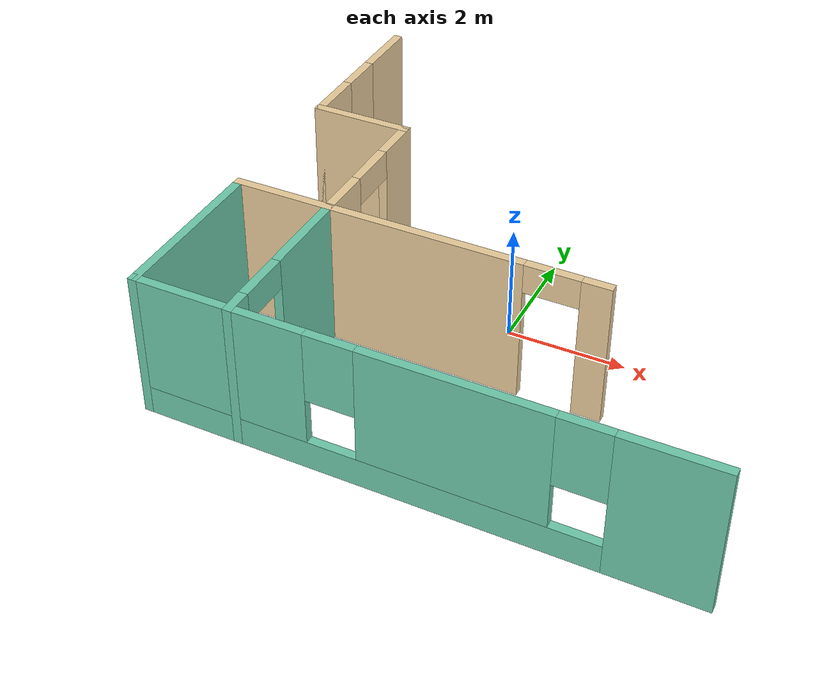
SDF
<sdf version="1.6">
 <model name="someHouse">
  <link name="Wall_38">
   <pose>-4.175 2.725 0 0 0 -1.5708</pose>
   <visual name="Wall_38_Visual_0">
    <pose>-0.917775 0 1.25 0 -0 0</pose>
    <geometry><box><size>1.16445 0.15 2.5</size></box></geometry>
    <material>
     <script><uri>file://media/materials/scripts/gazebo.material</uri><name>Gazebo/Grey</name></script>
     <ambient>0.921569 0.807843 0.615686 1</ambient>
     <shader type="pixel"/>
     <diffuse>0.7 0.7 0.7 1</diffuse>
     <specular>0.01 0.01 0.01 1</specular>
     <emissive>0 0 0 1</emissive>
    </material>
    <meta><layer>0</layer></meta>
   </visual>
   <visual name="Wall_38_Visual_1">
    <pose>0.582225 0 0.25 0 -0 0</pose>
    <geometry><box><size>1.83555 0.15 0.5</size></box></geometry>
    <material>
     <script><uri>file://media/materials/scripts/gazebo.material</uri><name>Gazebo/Grey</name></script>
     <ambient>0.921569 0.807843 0.615686 1</ambient>
     <shader type="pixel"/>
     <diffuse>0.7 0.7 0.7 1</diffuse>
     <specular>0.01 0.01 0.01 1</specular>
     <emissive>0 0 0 1</emissive>
    </material>
    <meta><layer>0</layer></meta>
   </visual>
   <visual name="Wall_38_Visual_2">
    <pose>0.982225 0 1.5 0 -0 0</pose>
    <geometry><box><size>1.03555 0.15 2</size></box></geometry>
    <material>
     <script><uri>file://media/materials/scripts/gazebo.material</uri><name>Gazebo/Grey</name></script>
     <ambient>0.921569 0.807843 0.615686 1</ambient>
     <shader type="pixel"/>
     <diffuse>0.7 0.7 0.7 1</diffuse>
     <specular>0.01 0.01 0.01 1</specular>
     <emissive>0 0 0 1</emissive>
    </material>
    <meta><layer>0</layer></meta>
   </visual>
   <visual name="Wall_38_Visual_3">
    <pose>0.06445 0 1.9 0 -0 0</pose>
    <geometry><box><size>0.8 0.15 1.2</size></box></geometry>
    <material>
     <script><uri>file://media/materials/scripts/gazebo.material</uri><name>Gazebo/Grey</name></script>
     <ambient>0.921569 0.807843 0.615686 1</ambient>
     <shader type="pixel"/>
     <diffuse>0.7 0.7 0.7 1</diffuse>
     <specular>0.01 0.01 0.01 1</specular>
     <emissive>0 0 0 1</emissive>
    </material>
    <meta><layer>0</layer></meta>
   </visual>
   <collision name="Wall_38_Collision_0">
    <pose>-0.917775 0 1.25 0 -0 0</pose>
    <geometry><box><size>1.16445 0.15 2.5</size></box></geometry>
    <surface>
     <friction>
      <ode><mu>1</mu><mu2>1</mu2><fdir1>0 0 0</fdir1><slip1>0</slip1><slip2>0</slip2></ode>
      <torsional>
       <coefficient>1</coefficient>
       <patch_radius>0</patch_radius>
       <surface_radius>0</surface_radius>
       <use_patch_radius>1</use_patch_radius>
       <ode><slip>0</slip></ode>
      </torsional>
     </friction>
     <bounce><restitution_coefficient>0</restitution_coefficient><threshold>1e+06</threshold></bounce>
     <contact>
      <collide_without_contact>0</collide_without_contact>
      <collide_without_contact_bitmask>1</collide_without_contact_bitmask>
      <collide_bitmask>1</collide_bitmask>
      <ode>
       <soft_cfm>0</soft_cfm>
       <soft_erp>0.2</soft_erp>
       <kp>1e+13</kp>
       <kd>1</kd>
       <max_vel>0.01</max_vel>
       <min_depth>0</min_depth>
      </ode>
      <bullet>
       <split_impulse>1</split_impulse>
       <split_impulse_penetration_threshold>-0.01</split_impulse_penetration_threshold>
       <soft_cfm>0</soft_cfm>
       <soft_erp>0.2</soft_erp>
       <kp>1e+13</kp>
       <kd>1</kd>
      </bullet>
     </contact>
    </surface>
   </collision>
   <collision name="Wall_38_Collision_1">
    <pose>0.582225 0 0.25 0 -0 0</pose>
    <geometry><box><size>1.83555 0.15 0.5</size></box></geometry>
    <surface>
     <friction>
      <ode><mu>1</mu><mu2>1</mu2><fdir1>0 0 0</fdir1><slip1>0</slip1><slip2>0</slip2></ode>
      <torsional>
       <coefficient>1</coefficient>
       <patch_radius>0</patch_radius>
       <surface_radius>0</surface_radius>
       <use_patch_radius>1</use_patch_radius>
       <ode><slip>0</slip></ode>
      </torsional>
     </friction>
     <bounce><restitution_coefficient>0</restitution_coefficient><threshold>1e+06</threshold></bounce>
     <contact>
      <collide_without_contact>0</collide_without_contact>
      <collide_without_contact_bitmask>1</collide_without_contact_bitmask>
      <collide_bitmask>1</collide_bitmask>
      <ode>
       <soft_cfm>0</soft_cfm>
       <soft_erp>0.2</soft_erp>
       <kp>1e+13</kp>
       <kd>1</kd>
       <max_vel>0.01</max_vel>
       <min_depth>0</min_depth>
      </ode>
      <bullet>
       <split_impulse>1</split_impulse>
       <split_impulse_penetration_threshold>-0.01</split_impulse_penetration_threshold>
       <soft_cfm>0</soft_cfm>
       <soft_erp>0.2</soft_erp>
       <kp>1e+13</kp>
       <kd>1</kd>
      </bullet>
     </contact>
    </surface>
   </collision>
   <collision name="Wall_38_Collision_2">
    <pose>0.982225 0 1.5 0 -0 0</pose>
    <geometry><box><size>1.03555 0.15 2</size></box></geometry>
    <surface>
     <friction>
      <ode><mu>1</mu><mu2>1</mu2><fdir1>0 0 0</fdir1><slip1>0</slip1><slip2>0</slip2></ode>
      <torsional>
       <coefficient>1</coefficient>
       <patch_radius>0</patch_radius>
       <surface_radius>0</surface_radius>
       <use_patch_radius>1</use_patch_radius>
       <ode><slip>0</slip></ode>
      </torsional>
     </friction>
     <bounce><restitution_coefficient>0</restitution_coefficient><threshold>1e+06</threshold></bounce>
     <contact>
      <collide_without_contact>0</collide_without_contact>
      <collide_without_contact_bitmask>1</collide_without_contact_bitmask>
      <collide_bitmask>1</collide_bitmask>
      <ode>
       <soft_cfm>0</soft_cfm>
       <soft_erp>0.2</soft_erp>
       <kp>1e+13</kp>
       <kd>1</kd>
       <max_vel>0.01</max_vel>
       <min_depth>0</min_depth>
      </ode>
      <bullet>
       <split_impulse>1</split_impulse>
       <split_impulse_penetration_threshold>-0.01</split_impulse_penetration_threshold>
       <soft_cfm>0</soft_cfm>
       <soft_erp>0.2</soft_erp>
       <kp>1e+13</kp>
       <kd>1</kd>
      </bullet>
     </contact>
    </surface>
   </collision>
   <collision name="Wall_38_Collision_3">
    <pose>0.06445 0 1.9 0 -0 0</pose>
    <geometry><box><size>0.8 0.15 1.2</size></box></geometry>
    <surface>
     <friction>
      <ode><mu>1</mu><mu2>1</mu2><fdir1>0 0 0</fdir1><slip1>0</slip1><slip2>0</slip2></ode>
      <torsional>
       <coefficient>1</coefficient>
       <patch_radius>0</patch_radius>
       <surface_radius>0</surface_radius>
       <use_patch_radius>1</use_patch_radius>
       <ode><slip>0</slip></ode>
      </torsional>
     </friction>
     <bounce><restitution_coefficient>0</restitution_coefficient><threshold>1e+06</threshold></bounce>
     <contact>
      <collide_without_contact>0</collide_without_contact>
      <collide_without_contact_bitmask>1</collide_without_contact_bitmask>
      <collide_bitmask>1</collide_bitmask>
      <ode>
       <soft_cfm>0</soft_cfm>
       <soft_erp>0.2</soft_erp>
       <kp>1e+13</kp>
       <kd>1</kd>
       <max_vel>0.01</max_vel>
       <min_depth>0</min_depth>
      </ode>
      <bullet>
       <split_impulse>1</split_impulse>
       <split_impulse_penetration_threshold>-0.01</split_impulse_penetration_threshold>
       <soft_cfm>0</soft_cfm>
       <soft_erp>0.2</soft_erp>
       <kp>1e+13</kp>
       <kd>1</kd>
      </bullet>
     </contact>
    </surface>
   </collision>
  </link>
  <link name="Wall_39">
   <pose>-3.375 1.3 0 0 -0 0</pose>
   <visual name="Wall_39_Visual">
    <pose>0 0 1.25 0 -0 0</pose>
    <geometry><box><size>1.75 0.15 2.5</size></box></geometry>
    <material>
     <script><uri>file://media/materials/scripts/gazebo.material</uri><name>Gazebo/Grey</name></script>
     <ambient>0.921569 0.807843 0.615686 1</ambient>
     <shader type="pixel"/>
     <diffuse>0.7 0.7 0.7 1</diffuse>
     <specular>0.01 0.01 0.01 1</specular>
     <emissive>0 0 0 1</emissive>
    </material>
    <meta><layer>0</layer></meta>
   </visual>
   <collision name="Wall_39_Collision">
    <pose>0 0 1.25 0 -0 0</pose>
    <geometry><box><size>1.75 0.15 2.5</size></box></geometry>
    <surface>
     <friction>
      <ode><mu>1</mu><mu2>1</mu2><fdir1>0 0 0</fdir1><slip1>0</slip1><slip2>0</slip2></ode>
      <torsional>
       <coefficient>1</coefficient>
       <patch_radius>0</patch_radius>
       <surface_radius>0</surface_radius>
       <use_patch_radius>1</use_patch_radius>
       <ode><slip>0</slip></ode>
      </torsional>
     </friction>
     <bounce><restitution_coefficient>0</restitution_coefficient><threshold>1e+06</threshold></bounce>
     <contact>
      <collide_without_contact>0</collide_without_contact>
      <collide_without_contact_bitmask>1</collide_without_contact_bitmask>
      <collide_bitmask>1</collide_bitmask>
      <ode>
       <soft_cfm>0</soft_cfm>
       <soft_erp>0.2</soft_erp>
       <kp>1e+13</kp>
       <kd>1</kd>
       <max_vel>0.01</max_vel>
       <min_depth>0</min_depth>
      </ode>
      <bullet>
       <split_impulse>1</split_impulse>
       <split_impulse_penetration_threshold>-0.01</split_impulse_penetration_threshold>
       <soft_cfm>0</soft_cfm>
       <soft_erp>0.2</soft_erp>
       <kp>1e+13</kp>
       <kd>1</kd>
      </bullet>
     </contact>
    </surface>
   </collision>
  </link>
  <link name="Wall_40">
   <pose>-2.575 0 0 0 0 -1.5708</pose>
   <visual name="Wall_40_Visual_0">
    <pose>-0.940762 0 1.25 0 -0 0</pose>
    <geometry><box><size>0.868475 0.15 2.5</size></box></geometry>
    <material>
     <script><uri>file://media/materials/scripts/gazebo.material</uri><name>Gazebo/Grey</name></script>
     <ambient>0.921569 0.807843 0.615686 1</ambient>
     <shader type="pixel"/>
     <diffuse>0.7 0.7 0.7 1</diffuse>
     <specular>0.01 0.01 0.01 1</specular>
     <emissive>0 0 0 1</emissive>
    </material>
    <meta><layer>0</layer></meta>
   </visual>
   <visual name="Wall_40_Visual_1">
    <pose>0.884238 0 1.25 0 -0 0</pose>
    <geometry><box><size>0.981525 0.15 2.5</size></box></geometry>
    <material>
     <script><uri>file://media/materials/scripts/gazebo.material</uri><name>Gazebo/Grey</name></script>
     <ambient>0.921569 0.807843 0.615686 1</ambient>
     <shader type="pixel"/>
     <diffuse>0.7 0.7 0.7 1</diffuse>
     <specular>0.01 0.01 0.01 1</specular>
     <emissive>0 0 0 1</emissive>
    </material>
    <meta><layer>0</layer></meta>
   </visual>
   <visual name="Wall_40_Visual_2">
    <pose>-0.056525 0 2.25 0 -0 0</pose>
    <geometry><box><size>0.9 0.15 0.5</size></box></geometry>
    <material>
     <script><uri>file://media/materials/scripts/gazebo.material</uri><name>Gazebo/Grey</name></script>
     <ambient>0.921569 0.807843 0.615686 1</ambient>
     <shader type="pixel"/>
     <diffuse>0.7 0.7 0.7 1</diffuse>
     <specular>0.01 0.01 0.01 1</specular>
     <emissive>0 0 0 1</emissive>
    </material>
    <meta><layer>0</layer></meta>
   </visual>
   <collision name="Wall_40_Collision_0">
    <pose>-0.940762 0 1.25 0 -0 0</pose>
    <geometry><box><size>0.868475 0.15 2.5</size></box></geometry>
    <surface>
     <friction>
      <ode><mu>1</mu><mu2>1</mu2><fdir1>0 0 0</fdir1><slip1>0</slip1><slip2>0</slip2></ode>
      <torsional>
       <coefficient>1</coefficient>
       <patch_radius>0</patch_radius>
       <surface_radius>0</surface_radius>
       <use_patch_radius>1</use_patch_radius>
       <ode><slip>0</slip></ode>
      </torsional>
     </friction>
     <bounce><restitution_coefficient>0</restitution_coefficient><threshold>1e+06</threshold></bounce>
     <contact>
      <collide_without_contact>0</collide_without_contact>
      <collide_without_contact_bitmask>1</collide_without_contact_bitmask>
      <collide_bitmask>1</collide_bitmask>
      <ode>
       <soft_cfm>0</soft_cfm>
       <soft_erp>0.2</soft_erp>
       <kp>1e+13</kp>
       <kd>1</kd>
       <max_vel>0.01</max_vel>
       <min_depth>0</min_depth>
      </ode>
      <bullet>
       <split_impulse>1</split_impulse>
       <split_impulse_penetration_threshold>-0.01</split_impulse_penetration_threshold>
       <soft_cfm>0</soft_cfm>
       <soft_erp>0.2</soft_erp>
       <kp>1e+13</kp>
       <kd>1</kd>
      </bullet>
     </contact>
    </surface>
   </collision>
   <collision name="Wall_40_Collision_1">
    <pose>0.884238 0 1.25 0 -0 0</pose>
    <geometry><box><size>0.981525 0.15 2.5</size></box></geometry>
    <surface>
     <friction>
      <ode><mu>1</mu><mu2>1</mu2><fdir1>0 0 0</fdir1><slip1>0</slip1><slip2>0</slip2></ode>
      <torsional>
       <coefficient>1</coefficient>
       <patch_radius>0</patch_radius>
       <surface_radius>0</surface_radius>
       <use_patch_radius>1</use_patch_radius>
       <ode><slip>0</slip></ode>
      </torsional>
     </friction>
     <bounce><restitution_coefficient>0</restitution_coefficient><threshold>1e+06</threshold></bounce>
     <contact>
      <collide_without_contact>0</collide_without_contact>
      <collide_without_contact_bitmask>1</collide_without_contact_bitmask>
      <collide_bitmask>1</collide_bitmask>
      <ode>
       <soft_cfm>0</soft_cfm>
       <soft_erp>0.2</soft_erp>
       <kp>1e+13</kp>
       <kd>1</kd>
       <max_vel>0.01</max_vel>
       <min_depth>0</min_depth>
      </ode>
      <bullet>
       <split_impulse>1</split_impulse>
       <split_impulse_penetration_threshold>-0.01</split_impulse_penetration_threshold>
       <soft_cfm>0</soft_cfm>
       <soft_erp>0.2</soft_erp>
       <kp>1e+13</kp>
       <kd>1</kd>
      </bullet>
     </contact>
    </surface>
   </collision>
   <collision name="Wall_40_Collision_2">
    <pose>-0.056525 0 2.25 0 -0 0</pose>
    <geometry><box><size>0.9 0.15 0.5</size></box></geometry>
    <surface>
     <friction>
      <ode><mu>1</mu><mu2>1</mu2><fdir1>0 0 0</fdir1><slip1>0</slip1><slip2>0</slip2></ode>
      <torsional>
       <coefficient>1</coefficient>
       <patch_radius>0</patch_radius>
       <surface_radius>0</surface_radius>
       <use_patch_radius>1</use_patch_radius>
       <ode><slip>0</slip></ode>
      </torsional>
     </friction>
     <bounce><restitution_coefficient>0</restitution_coefficient><threshold>1e+06</threshold></bounce>
     <contact>
      <collide_without_contact>0</collide_without_contact>
      <collide_without_contact_bitmask>1</collide_without_contact_bitmask>
      <collide_bitmask>1</collide_bitmask>
      <ode>
       <soft_cfm>0</soft_cfm>
       <soft_erp>0.2</soft_erp>
       <kp>1e+13</kp>
       <kd>1</kd>
       <max_vel>0.01</max_vel>
       <min_depth>0</min_depth>
      </ode>
      <bullet>
       <split_impulse>1</split_impulse>
       <split_impulse_penetration_threshold>-0.01</split_impulse_penetration_threshold>
       <soft_cfm>0</soft_cfm>
       <soft_erp>0.2</soft_erp>
       <kp>1e+13</kp>
       <kd>1</kd>
      </bullet>
     </contact>
    </surface>
   </collision>
  </link>
  <link name="Wall_41">
   <pose>-0.275 -1.3 0 0 -0 0</pose>
   <visual name="Wall_41_Visual_0">
    <pose>-0.691647 0 1.25 0 -0 0</pose>
    <geometry><box><size>3.36671 0.15 2.5</size></box></geometry>
    <material>
     <script><uri>file://media/materials/scripts/gazebo.material</uri><name>Gazebo/Grey</name></script>
     <ambient>0.921569 0.807843 0.615686 1</ambient>
     <shader type="pixel"/>
     <diffuse>0.7 0.7 0.7 1</diffuse>
     <specular>0.01 0.01 0.01 1</specular>
     <emissive>0 0 0 1</emissive>
    </material>
    <meta><layer>0</layer></meta>
   </visual>
   <visual name="Wall_41_Visual_1">
    <pose>2.13335 0 1.25 0 -0 0</pose>
    <geometry><box><size>0.483294 0.15 2.5</size></box></geometry>
    <material>
     <script><uri>file://media/materials/scripts/gazebo.material</uri><name>Gazebo/Grey</name></script>
     <ambient>0.921569 0.807843 0.615686 1</ambient>
     <shader type="pixel"/>
     <diffuse>0.7 0.7 0.7 1</diffuse>
     <specular>0.01 0.01 0.01 1</specular>
     <emissive>0 0 0 1</emissive>
    </material>
    <meta><layer>0</layer></meta>
   </visual>
   <visual name="Wall_41_Visual_2">
    <pose>1.44171 0 2.25 0 -0 0</pose>
    <geometry><box><size>0.9 0.15 0.5</size></box></geometry>
    <material>
     <script><uri>file://media/materials/scripts/gazebo.material</uri><name>Gazebo/Grey</name></script>
     <ambient>0.921569 0.807843 0.615686 1</ambient>
     <shader type="pixel"/>
     <diffuse>0.7 0.7 0.7 1</diffuse>
     <specular>0.01 0.01 0.01 1</specular>
     <emissive>0 0 0 1</emissive>
    </material>
    <meta><layer>0</layer></meta>
   </visual>
   <collision name="Wall_41_Collision_0">
    <pose>-0.691647 0 1.25 0 -0 0</pose>
    <geometry><box><size>3.36671 0.15 2.5</size></box></geometry>
    <surface>
     <friction>
      <ode><mu>1</mu><mu2>1</mu2><fdir1>0 0 0</fdir1><slip1>0</slip1><slip2>0</slip2></ode>
      <torsional>
       <coefficient>1</coefficient>
       <patch_radius>0</patch_radius>
       <surface_radius>0</surface_radius>
       <use_patch_radius>1</use_patch_radius>
       <ode><slip>0</slip></ode>
      </torsional>
     </friction>
     <bounce><restitution_coefficient>0</restitution_coefficient><threshold>1e+06</threshold></bounce>
     <contact>
      <collide_without_contact>0</collide_without_contact>
      <collide_without_contact_bitmask>1</collide_without_contact_bitmask>
      <collide_bitmask>1</collide_bitmask>
      <ode>
       <soft_cfm>0</soft_cfm>
       <soft_erp>0.2</soft_erp>
       <kp>1e+13</kp>
       <kd>1</kd>
       <max_vel>0.01</max_vel>
       <min_depth>0</min_depth>
      </ode>
      <bullet>
       <split_impulse>1</split_impulse>
       <split_impulse_penetration_threshold>-0.01</split_impulse_penetration_threshold>
       <soft_cfm>0</soft_cfm>
       <soft_erp>0.2</soft_erp>
       <kp>1e+13</kp>
       <kd>1</kd>
      </bullet>
     </contact>
    </surface>
   </collision>
   <collision name="Wall_41_Collision_1">
    <pose>2.13335 0 1.25 0 -0 0</pose>
    <geometry><box><size>0.483294 0.15 2.5</size></box></geometry>
    <surface>
     <friction>
      <ode><mu>1</mu><mu2>1</mu2><fdir1>0 0 0</fdir1><slip1>0</slip1><slip2>0</slip2></ode>
      <torsional>
       <coefficient>1</coefficient>
       <patch_radius>0</patch_radius>
       <surface_radius>0</surface_radius>
       <use_patch_radius>1</use_patch_radius>
       <ode><slip>0</slip></ode>
      </torsional>
     </friction>
     <bounce><restitution_coefficient>0</restitution_coefficient><threshold>1e+06</threshold></bounce>
     <contact>
      <collide_without_contact>0</collide_without_contact>
      <collide_without_contact_bitmask>1</collide_without_contact_bitmask>
      <collide_bitmask>1</collide_bitmask>
      <ode>
       <soft_cfm>0</soft_cfm>
       <soft_erp>0.2</soft_erp>
       <kp>1e+13</kp>
       <kd>1</kd>
       <max_vel>0.01</max_vel>
       <min_depth>0</min_depth>
      </ode>
      <bullet>
       <split_impulse>1</split_impulse>
       <split_impulse_penetration_threshold>-0.01</split_impulse_penetration_threshold>
       <soft_cfm>0</soft_cfm>
       <soft_erp>0.2</soft_erp>
       <kp>1e+13</kp>
       <kd>1</kd>
      </bullet>
     </contact>
    </surface>
   </collision>
   <collision name="Wall_41_Collision_2">
    <pose>1.44171 0 2.25 0 -0 0</pose>
    <geometry><box><size>0.9 0.15 0.5</size></box></geometry>
    <surface>
     <friction>
      <ode><mu>1</mu><mu2>1</mu2><fdir1>0 0 0</fdir1><slip1>0</slip1><slip2>0</slip2></ode>
      <torsional>
       <coefficient>1</coefficient>
       <patch_radius>0</patch_radius>
       <surface_radius>0</surface_radius>
       <use_patch_radius>1</use_patch_radius>
       <ode><slip>0</slip></ode>
      </torsional>
     </friction>
     <bounce><restitution_coefficient>0</restitution_coefficient><threshold>1e+06</threshold></bounce>
     <contact>
      <collide_without_contact>0</collide_without_contact>
      <collide_without_contact_bitmask>1</collide_without_contact_bitmask>
      <collide_bitmask>1</collide_bitmask>
      <ode>
       <soft_cfm>0</soft_cfm>
       <soft_erp>0.2</soft_erp>
       <kp>1e+13</kp>
       <kd>1</kd>
       <max_vel>0.01</max_vel>
       <min_depth>0</min_depth>
      </ode>
      <bullet>
       <split_impulse>1</split_impulse>
       <split_impulse_penetration_threshold>-0.01</split_impulse_penetration_threshold>
       <soft_cfm>0</soft_cfm>
       <soft_erp>0.2</soft_erp>
       <kp>1e+13</kp>
       <kd>1</kd>
      </bullet>
     </contact>
    </surface>
   </collision>
  </link>
  <link name="Wall_46">
   <pose>0.25 -4.15 0 0 -0 3.14159</pose>
   <visual name="Wall_46_Visual_0">
    <pose>-3.71177 0 1.25 0 -0 0</pose>
    <geometry><box><size>1.57647 0.15 2.5</size></box></geometry>
    <material>
     <script><uri>file://media/materials/scripts/gazebo.material</uri><name>Gazebo/Grey</name></script>
     <ambient>0.435294 0.796078 0.67451 1</ambient>
     <shader type="pixel"/>
     <diffuse>0.7 0.7 0.7 1</diffuse>
     <specular>0.01 0.01 0.01 1</specular>
     <emissive>0 0 0 1</emissive>
    </material>
    <meta><layer>0</layer></meta>
   </visual>
   <visual name="Wall_46_Visual_1">
    <pose>0.788235 0 0.25 0 -0 0</pose>
    <geometry><box><size>7.42353 0.15 0.5</size></box></geometry>
    <material>
     <script><uri>file://media/materials/scripts/gazebo.material</uri><name>Gazebo/Grey</name></script>
     <ambient>0.435294 0.796078 0.67451 1</ambient>
     <shader type="pixel"/>
     <diffuse>0.7 0.7 0.7 1</diffuse>
     <specular>0.01 0.01 0.01 1</specular>
     <emissive>0 0 0 1</emissive>
    </material>
    <meta><layer>0</layer></meta>
   </visual>
   <visual name="Wall_46_Visual_2">
    <pose>-0.652093 0 1.5 0 -0 0</pose>
    <geometry><box><size>2.94287 0.15 2</size></box></geometry>
    <material>
     <script><uri>file://media/materials/scripts/gazebo.material</uri><name>Gazebo/Grey</name></script>
     <ambient>0.435294 0.796078 0.67451 1</ambient>
     <shader type="pixel"/>
     <diffuse>0.7 0.7 0.7 1</diffuse>
     <specular>0.01 0.01 0.01 1</specular>
     <emissive>0 0 0 1</emissive>
    </material>
    <meta><layer>0</layer></meta>
   </visual>
   <visual name="Wall_46_Visual_3">
    <pose>3.05967 0 1.5 0 -0 0</pose>
    <geometry><box><size>2.88066 0.15 2</size></box></geometry>
    <material>
     <script><uri>file://media/materials/scripts/gazebo.material</uri><name>Gazebo/Grey</name></script>
     <ambient>0.435294 0.796078 0.67451 1</ambient>
     <shader type="pixel"/>
     <diffuse>0.7 0.7 0.7 1</diffuse>
     <specular>0.01 0.01 0.01 1</specular>
     <emissive>0 0 0 1</emissive>
    </material>
    <meta><layer>0</layer></meta>
   </visual>
   <visual name="Wall_46_Visual_4">
    <pose>-2.52353 0 1.9 0 -0 0</pose>
    <geometry><box><size>0.8 0.15 1.2</size></box></geometry>
    <material>
     <script><uri>file://media/materials/scripts/gazebo.material</uri><name>Gazebo/Grey</name></script>
     <ambient>0.435294 0.796078 0.67451 1</ambient>
     <shader type="pixel"/>
     <diffuse>0.7 0.7 0.7 1</diffuse>
     <specular>0.01 0.01 0.01 1</specular>
     <emissive>0 0 0 1</emissive>
    </material>
    <meta><layer>0</layer></meta>
   </visual>
   <visual name="Wall_46_Visual_5">
    <pose>1.21934 0 1.9 0 -0 0</pose>
    <geometry><box><size>0.8 0.15 1.2</size></box></geometry>
    <material>
     <script><uri>file://media/materials/scripts/gazebo.material</uri><name>Gazebo/Grey</name></script>
     <ambient>0.435294 0.796078 0.67451 1</ambient>
     <shader type="pixel"/>
     <diffuse>0.7 0.7 0.7 1</diffuse>
     <specular>0.01 0.01 0.01 1</specular>
     <emissive>0 0 0 1</emissive>
    </material>
    <meta><layer>0</layer></meta>
   </visual>
   <collision name="Wall_46_Collision_0">
    <pose>-3.71177 0 1.25 0 -0 0</pose>
    <geometry><box><size>1.57647 0.15 2.5</size></box></geometry>
    <surface>
     <friction>
      <ode><mu>1</mu><mu2>1</mu2><fdir1>0 0 0</fdir1><slip1>0</slip1><slip2>0</slip2></ode>
      <torsional>
       <coefficient>1</coefficient>
       <patch_radius>0</patch_radius>
       <surface_radius>0</surface_radius>
       <use_patch_radius>1</use_patch_radius>
       <ode><slip>0</slip></ode>
      </torsional>
     </friction>
     <bounce><restitution_coefficient>0</restitution_coefficient><threshold>1e+06</threshold></bounce>
     <contact>
      <collide_without_contact>0</collide_without_contact>
      <collide_without_contact_bitmask>1</collide_without_contact_bitmask>
      <collide_bitmask>1</collide_bitmask>
      <ode>
       <soft_cfm>0</soft_cfm>
       <soft_erp>0.2</soft_erp>
       <kp>1e+13</kp>
       <kd>1</kd>
       <max_vel>0.01</max_vel>
       <min_depth>0</min_depth>
      </ode>
      <bullet>
       <split_impulse>1</split_impulse>
       <split_impulse_penetration_threshold>-0.01</split_impulse_penetration_threshold>
       <soft_cfm>0</soft_cfm>
       <soft_erp>0.2</soft_erp>
       <kp>1e+13</kp>
       <kd>1</kd>
      </bullet>
     </contact>
    </surface>
   </collision>
   <collision name="Wall_46_Collision_1">
    <pose>0.788235 0 0.25 0 -0 0</pose>
    <geometry><box><size>7.42353 0.15 0.5</size></box></geometry>
    <surface>
     <friction>
      <ode><mu>1</mu><mu2>1</mu2><fdir1>0 0 0</fdir1><slip1>0</slip1><slip2>0</slip2></ode>
      <torsional>
       <coefficient>1</coefficient>
       <patch_radius>0</patch_radius>
       <surface_radius>0</surface_radius>
       <use_patch_radius>1</use_patch_radius>
       <ode><slip>0</slip></ode>
      </torsional>
     </friction>
     <bounce><restitution_coefficient>0</restitution_coefficient><threshold>1e+06</threshold></bounce>
     <contact>
      <collide_without_contact>0</collide_without_contact>
      <collide_without_contact_bitmask>1</collide_without_contact_bitmask>
      <collide_bitmask>1</collide_bitmask>
      <ode>
       <soft_cfm>0</soft_cfm>
       <soft_erp>0.2</soft_erp>
       <kp>1e+13</kp>
       <kd>1</kd>
       <max_vel>0.01</max_vel>
       <min_depth>0</min_depth>
      </ode>
      <bullet>
       <split_impulse>1</split_impulse>
       <split_impulse_penetration_threshold>-0.01</split_impulse_penetration_threshold>
       <soft_cfm>0</soft_cfm>
       <soft_erp>0.2</soft_erp>
       <kp>1e+13</kp>
       <kd>1</kd>
      </bullet>
     </contact>
    </surface>
   </collision>
   <collision name="Wall_46_Collision_3">
    <pose>3.05967 0 1.5 0 -0 0</pose>
    <geometry><box><size>2.88066 0.15 2</size></box></geometry>
    <surface>
     <friction>
      <ode><mu>1</mu><mu2>1</mu2><fdir1>0 0 0</fdir1><slip1>0</slip1><slip2>0</slip2></ode>
      <torsional>
       <coefficient>1</coefficient>
       <patch_radius>0</patch_radius>
       <surface_radius>0</surface_radius>
       <use_patch_radius>1</use_patch_radius>
       <ode><slip>0</slip></ode>
      </torsional>
     </friction>
     <bounce><restitution_coefficient>0</restitution_coefficient><threshold>1e+06</threshold></bounce>
     <contact>
      <collide_without_contact>0</collide_without_contact>
      <collide_without_contact_bitmask>1</collide_without_contact_bitmask>
      <collide_bitmask>1</collide_bitmask>
      <ode>
       <soft_cfm>0</soft_cfm>
       <soft_erp>0.2</soft_erp>
       <kp>1e+13</kp>
       <kd>1</kd>
       <max_vel>0.01</max_vel>
       <min_depth>0</min_depth>
      </ode>
      <bullet>
       <split_impulse>1</split_impulse>
       <split_impulse_penetration_threshold>-0.01</split_impulse_penetration_threshold>
       <soft_cfm>0</soft_cfm>
       <soft_erp>0.2</soft_erp>
       <kp>1e+13</kp>
       <kd>1</kd>
      </bullet>
     </contact>
    </surface>
   </collision>
   <collision name="Wall_46_Collision_2">
    <pose>-0.652093 0 1.5 0 -0 0</pose>
    <geometry><box><size>2.94287 0.15 2</size></box></geometry>
    <surface>
     <friction>
      <ode><mu>1</mu><mu2>1</mu2><fdir1>0 0 0</fdir1><slip1>0</slip1><slip2>0</slip2></ode>
      <torsional>
       <coefficient>1</coefficient>
       <patch_radius>0</patch_radius>
       <surface_radius>0</surface_radius>
       <use_patch_radius>1</use_patch_radius>
       <ode><slip>0</slip></ode>
      </torsional>
     </friction>
     <bounce><restitution_coefficient>0</restitution_coefficient><threshold>1e+06</threshold></bounce>
     <contact>
      <collide_without_contact>0</collide_without_contact>
      <collide_without_contact_bitmask>1</collide_without_contact_bitmask>
      <collide_bitmask>1</collide_bitmask>
      <ode>
       <soft_cfm>0</soft_cfm>
       <soft_erp>0.2</soft_erp>
       <kp>1e+13</kp>
       <kd>1</kd>
       <max_vel>0.01</max_vel>
       <min_depth>0</min_depth>
      </ode>
      <bullet>
       <split_impulse>1</split_impulse>
       <split_impulse_penetration_threshold>-0.01</split_impulse_penetration_threshold>
       <soft_cfm>0</soft_cfm>
       <soft_erp>0.2</soft_erp>
       <kp>1e+13</kp>
       <kd>1</kd>
      </bullet>
     </contact>
    </surface>
   </collision>
   <collision name="Wall_46_Collision_4">
    <pose>-2.52353 0 1.9 0 -0 0</pose>
    <geometry><box><size>0.8 0.15 1.2</size></box></geometry>
    <surface>
     <friction>
      <ode><mu>1</mu><mu2>1</mu2><fdir1>0 0 0</fdir1><slip1>0</slip1><slip2>0</slip2></ode>
      <torsional>
       <coefficient>1</coefficient>
       <patch_radius>0</patch_radius>
       <surface_radius>0</surface_radius>
       <use_patch_radius>1</use_patch_radius>
       <ode><slip>0</slip></ode>
      </torsional>
     </friction>
     <bounce><restitution_coefficient>0</restitution_coefficient><threshold>1e+06</threshold></bounce>
     <contact>
      <collide_without_contact>0</collide_without_contact>
      <collide_without_contact_bitmask>1</collide_without_contact_bitmask>
      <collide_bitmask>1</collide_bitmask>
      <ode>
       <soft_cfm>0</soft_cfm>
       <soft_erp>0.2</soft_erp>
       <kp>1e+13</kp>
       <kd>1</kd>
       <max_vel>0.01</max_vel>
       <min_depth>0</min_depth>
      </ode>
      <bullet>
       <split_impulse>1</split_impulse>
       <split_impulse_penetration_threshold>-0.01</split_impulse_penetration_threshold>
       <soft_cfm>0</soft_cfm>
       <soft_erp>0.2</soft_erp>
       <kp>1e+13</kp>
       <kd>1</kd>
      </bullet>
     </contact>
    </surface>
   </collision>
   <collision name="Wall_46_Collision_5">
    <pose>1.21934 0 1.9 0 -0 0</pose>
    <geometry><box><size>0.8 0.15 1.2</size></box></geometry>
    <surface>
     <friction>
      <ode><mu>1</mu><mu2>1</mu2><fdir1>0 0 0</fdir1><slip1>0</slip1><slip2>0</slip2></ode>
      <torsional>
       <coefficient>1</coefficient>
       <patch_radius>0</patch_radius>
       <surface_radius>0</surface_radius>
       <use_patch_radius>1</use_patch_radius>
       <ode><slip>0</slip></ode>
      </torsional>
     </friction>
     <bounce><restitution_coefficient>0</restitution_coefficient><threshold>1e+06</threshold></bounce>
     <contact>
      <collide_without_contact>0</collide_without_contact>
      <collide_without_contact_bitmask>1</collide_without_contact_bitmask>
      <collide_bitmask>1</collide_bitmask>
      <ode>
       <soft_cfm>0</soft_cfm>
       <soft_erp>0.2</soft_erp>
       <kp>1e+13</kp>
       <kd>1</kd>
       <max_vel>0.01</max_vel>
       <min_depth>0</min_depth>
      </ode>
      <bullet>
       <split_impulse>1</split_impulse>
       <split_impulse_penetration_threshold>-0.01</split_impulse_penetration_threshold>
       <soft_cfm>0</soft_cfm>
       <soft_erp>0.2</soft_erp>
       <kp>1e+13</kp>
       <kd>1</kd>
      </bullet>
     </contact>
    </surface>
   </collision>
  </link>
  <link name="Wall_47">
   <pose>-4.175 -2.725 0 0 -0 1.5708</pose>
   <visual name="Wall_47_Visual">
    <pose>0 0 1.25 0 -0 0</pose>
    <geometry><box><size>3 0.15 2.5</size></box></geometry>
    <material>
     <script><uri>file://media/materials/scripts/gazebo.material</uri><name>Gazebo/Grey</name></script>
     <ambient>0.435294 0.796078 0.67451 1</ambient>
     <shader type="pixel"/>
     <diffuse>0.7 0.7 0.7 1</diffuse>
     <specular>0.01 0.01 0.01 1</specular>
     <emissive>0 0 0 1</emissive>
    </material>
    <meta><layer>0</layer></meta>
   </visual>
   <collision name="Wall_47_Collision">
    <pose>0 0 1.25 0 -0 0</pose>
    <geometry><box><size>3 0.15 2.5</size></box></geometry>
    <surface>
     <friction>
      <ode><mu>1</mu><mu2>1</mu2><fdir1>0 0 0</fdir1><slip1>0</slip1><slip2>0</slip2></ode>
      <torsional>
       <coefficient>1</coefficient>
       <patch_radius>0</patch_radius>
       <surface_radius>0</surface_radius>
       <use_patch_radius>1</use_patch_radius>
       <ode><slip>0</slip></ode>
      </torsional>
     </friction>
     <bounce><restitution_coefficient>0</restitution_coefficient><threshold>1e+06</threshold></bounce>
     <contact>
      <collide_without_contact>0</collide_without_contact>
      <collide_without_contact_bitmask>1</collide_without_contact_bitmask>
      <collide_bitmask>1</collide_bitmask>
      <ode>
       <soft_cfm>0</soft_cfm>
       <soft_erp>0.2</soft_erp>
       <kp>1e+13</kp>
       <kd>1</kd>
       <max_vel>0.01</max_vel>
       <min_depth>0</min_depth>
      </ode>
      <bullet>
       <split_impulse>1</split_impulse>
       <split_impulse_penetration_threshold>-0.01</split_impulse_penetration_threshold>
       <soft_cfm>0</soft_cfm>
       <soft_erp>0.2</soft_erp>
       <kp>1e+13</kp>
       <kd>1</kd>
      </bullet>
     </contact>
    </surface>
   </collision>
  </link>
  <link name="Wall_49">
   <pose>-2.575 -2.725 0 0 0 -1.5708</pose>
   <visual name="Wall_49_Visual_0">
    <pose>-0.676974 0 1.25 0 -0 0</pose>
    <geometry><box><size>1.64605 0.15 2.5</size></box></geometry>
    <material>
     <script><uri>file://media/materials/scripts/gazebo.material</uri><name>Gazebo/Grey</name></script>
     <ambient>0.435294 0.796078 0.67451 1</ambient>
     <shader type="pixel"/>
     <diffuse>0.7 0.7 0.7 1</diffuse>
     <specular>0.01 0.01 0.01 1</specular>
     <emissive>0 0 0 1</emissive>
    </material>
    <meta><layer>0</layer></meta>
   </visual>
   <visual name="Wall_49_Visual_1">
    <pose>1.27303 0 1.25 0 -0 0</pose>
    <geometry><box><size>0.453948 0.15 2.5</size></box></geometry>
    <material>
     <script><uri>file://media/materials/scripts/gazebo.material</uri><name>Gazebo/Grey</name></script>
     <ambient>0.435294 0.796078 0.67451 1</ambient>
     <shader type="pixel"/>
     <diffuse>0.7 0.7 0.7 1</diffuse>
     <specular>0.01 0.01 0.01 1</specular>
     <emissive>0 0 0 1</emissive>
    </material>
    <meta><layer>0</layer></meta>
   </visual>
   <visual name="Wall_49_Visual_2">
    <pose>0.596052 0 2.25 0 -0 0</pose>
    <geometry><box><size>0.9 0.15 0.5</size></box></geometry>
    <material>
     <script><uri>file://media/materials/scripts/gazebo.material</uri><name>Gazebo/Grey</name></script>
     <ambient>0.435294 0.796078 0.67451 1</ambient>
     <shader type="pixel"/>
     <diffuse>0.7 0.7 0.7 1</diffuse>
     <specular>0.01 0.01 0.01 1</specular>
     <emissive>0 0 0 1</emissive>
    </material>
    <meta><layer>0</layer></meta>
   </visual>
   <collision name="Wall_49_Collision_0">
    <pose>-0.676974 0 1.25 0 -0 0</pose>
    <geometry><box><size>1.64605 0.15 2.5</size></box></geometry>
    <surface>
     <friction>
      <ode><mu>1</mu><mu2>1</mu2><fdir1>0 0 0</fdir1><slip1>0</slip1><slip2>0</slip2></ode>
      <torsional>
       <coefficient>1</coefficient>
       <patch_radius>0</patch_radius>
       <surface_radius>0</surface_radius>
       <use_patch_radius>1</use_patch_radius>
       <ode><slip>0</slip></ode>
      </torsional>
     </friction>
     <bounce><restitution_coefficient>0</restitution_coefficient><threshold>1e+06</threshold></bounce>
     <contact>
      <collide_without_contact>0</collide_without_contact>
      <collide_without_contact_bitmask>1</collide_without_contact_bitmask>
      <collide_bitmask>1</collide_bitmask>
      <ode>
       <soft_cfm>0</soft_cfm>
       <soft_erp>0.2</soft_erp>
       <kp>1e+13</kp>
       <kd>1</kd>
       <max_vel>0.01</max_vel>
       <min_depth>0</min_depth>
      </ode>
      <bullet>
       <split_impulse>1</split_impulse>
       <split_impulse_penetration_threshold>-0.01</split_impulse_penetration_threshold>
       <soft_cfm>0</soft_cfm>
       <soft_erp>0.2</soft_erp>
       <kp>1e+13</kp>
       <kd>1</kd>
      </bullet>
     </contact>
    </surface>
   </collision>
   <collision name="Wall_49_Collision_2">
    <pose>0.596052 0 2.25 0 -0 0</pose>
    <geometry><box><size>0.9 0.15 0.5</size></box></geometry>
    <surface>
     <friction>
      <ode><mu>1</mu><mu2>1</mu2><fdir1>0 0 0</fdir1><slip1>0</slip1><slip2>0</slip2></ode>
      <torsional>
       <coefficient>1</coefficient>
       <patch_radius>0</patch_radius>
       <surface_radius>0</surface_radius>
       <use_patch_radius>1</use_patch_radius>
       <ode><slip>0</slip></ode>
      </torsional>
     </friction>
     <bounce><restitution_coefficient>0</restitution_coefficient><threshold>1e+06</threshold></bounce>
     <contact>
      <collide_without_contact>0</collide_without_contact>
      <collide_without_contact_bitmask>1</collide_without_contact_bitmask>
      <collide_bitmask>1</collide_bitmask>
      <ode>
       <soft_cfm>0</soft_cfm>
       <soft_erp>0.2</soft_erp>
       <kp>1e+13</kp>
       <kd>1</kd>
       <max_vel>0.01</max_vel>
       <min_depth>0</min_depth>
      </ode>
      <bullet>
       <split_impulse>1</split_impulse>
       <split_impulse_penetration_threshold>-0.01</split_impulse_penetration_threshold>
       <soft_cfm>0</soft_cfm>
       <soft_erp>0.2</soft_erp>
       <kp>1e+13</kp>
       <kd>1</kd>
      </bullet>
     </contact>
    </surface>
   </collision>
   <collision name="Wall_49_Collision_1">
    <pose>1.27303 0 1.25 0 -0 0</pose>
    <geometry><box><size>0.453948 0.15 2.5</size></box></geometry>
    <surface>
     <friction>
      <ode><mu>1</mu><mu2>1</mu2><fdir1>0 0 0</fdir1><slip1>0</slip1><slip2>0</slip2></ode>
      <torsional>
       <coefficient>1</coefficient>
       <patch_radius>0</patch_radius>
       <surface_radius>0</surface_radius>
       <use_patch_radius>1</use_patch_radius>
       <ode><slip>0</slip></ode>
      </torsional>
     </friction>
     <bounce><restitution_coefficient>0</restitution_coefficient><threshold>1e+06</threshold></bounce>
     <contact>
      <collide_without_contact>0</collide_without_contact>
      <collide_without_contact_bitmask>1</collide_without_contact_bitmask>
      <collide_bitmask>1</collide_bitmask>
      <ode>
       <soft_cfm>0</soft_cfm>
       <soft_erp>0.2</soft_erp>
       <kp>1e+13</kp>
       <kd>1</kd>
       <max_vel>0.01</max_vel>
       <min_depth>0</min_depth>
      </ode>
      <bullet>
       <split_impulse>1</split_impulse>
       <split_impulse_penetration_threshold>-0.01</split_impulse_penetration_threshold>
       <soft_cfm>0</soft_cfm>
       <soft_erp>0.2</soft_erp>
       <kp>1e+13</kp>
       <kd>1</kd>
      </bullet>
     </contact>
    </surface>
   </collision>
  </link>
  <link name="Wall_59">
   <pose>-3.375 -1.3 0 0 -0 3.14159</pose>
   <visual name="Wall_59_Visual">
    <pose>0 0 1.25 0 -0 0</pose>
    <geometry><box><size>1.75 0.15 2.5</size></box></geometry>
    <material>
     <script><uri>file://media/materials/scripts/gazebo.material</uri><name>Gazebo/Grey</name></script>
     <ambient>0.921569 0.807843 0.615686 1</ambient>
     <shader type="pixel"/>
     <diffuse>0.7 0.7 0.7 1</diffuse>
     <specular>0.01 0.01 0.01 1</specular>
     <emissive>0 0 0 1</emissive>
    </material>
    <meta><layer>0</layer></meta>
   </visual>
   <collision name="Wall_59_Collision">
    <pose>0 0 1.25 0 -0 0</pose>
    <geometry><box><size>1.75 0.15 2.5</size></box></geometry>
    <surface>
     <friction>
      <ode><mu>1</mu><mu2>1</mu2><fdir1>0 0 0</fdir1><slip1>0</slip1><slip2>0</slip2></ode>
      <torsional>
       <coefficient>1</coefficient>
       <patch_radius>0</patch_radius>
       <surface_radius>0</surface_radius>
       <use_patch_radius>1</use_patch_radius>
       <ode><slip>0</slip></ode>
      </torsional>
     </friction>
     <bounce><restitution_coefficient>0</restitution_coefficient><threshold>1e+06</threshold></bounce>
     <contact>
      <collide_without_contact>0</collide_without_contact>
      <collide_without_contact_bitmask>1</collide_without_contact_bitmask>
      <collide_bitmask>1</collide_bitmask>
      <ode>
       <soft_cfm>0</soft_cfm>
       <soft_erp>0.2</soft_erp>
       <kp>1e+13</kp>
       <kd>1</kd>
       <max_vel>0.01</max_vel>
       <min_depth>0</min_depth>
      </ode>
      <bullet>
       <split_impulse>1</split_impulse>
       <split_impulse_penetration_threshold>-0.01</split_impulse_penetration_threshold>
       <soft_cfm>0</soft_cfm>
       <soft_erp>0.2</soft_erp>
       <kp>1e+13</kp>
       <kd>1</kd>
      </bullet>
     </contact>
    </surface>
   </collision>
  </link>
  <static>1</static>
 </model>
</sdf>
